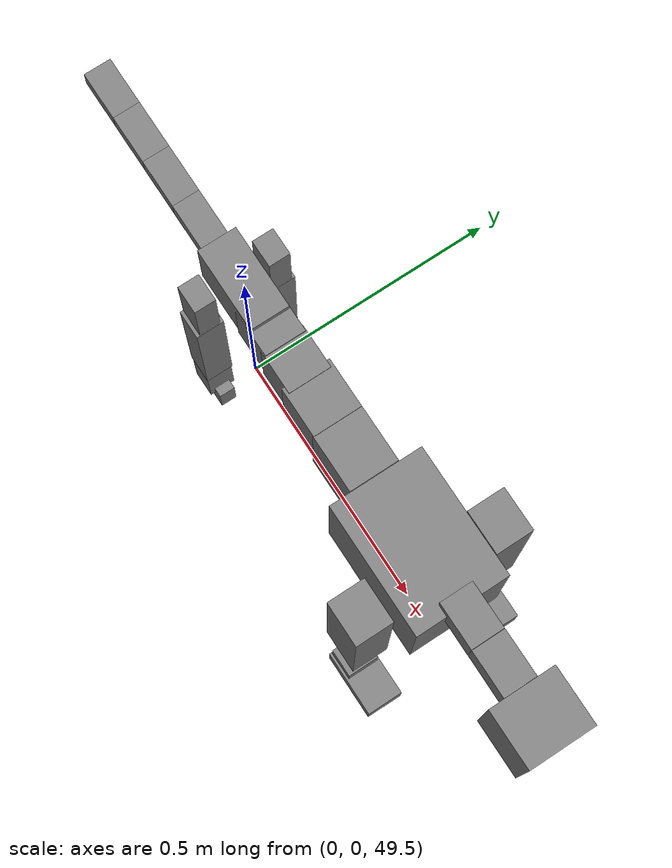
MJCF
<mujoco model="dog">

    <default>
        <joint armature="0.02" stiffness="1" damping="0.2" limited="true"/>
        <geom condim="3" friction="1 0.05 0.05" margin="0.01"/>
        <motor ctrllimited="true" ctrlrange="-1.0 1.0" forcelimited="true" gear="50"/>
    </default>

    <compiler inertiafromgeom="true" angle="radian"/>

    <option timestep="0.016" iterations="50" tolerance="1e-10" solver="Newton" jacobian="dense" cone="pyramidal"/>

    <size nconmax="20000" njmax="60000" nstack="5000000"/>
    <visual>
        <map force="0.1" zfar="30"/>
        <rgba haze="0.15 0.25 0.35 1"/>
        <quality shadowsize="2048"/>
        <global offwidth="800" offheight="800"/>
    </visual>

    <asset>
        <texture type="skybox" builtin="gradient" rgb1="0.3 0.5 0.7" rgb2="0 0 0" width="512" height="512"/>
        <texture name="texplane" type="2d" builtin="checker" rgb1=".2 .3 .4" rgb2=".1 0.15 0.2" width="512" height="512"
                 mark="cross" markrgb=".8 .8 .8"/>
        <texture name="texgeom" type="cube" builtin="flat" mark="cross" width="127" height="1278" rgb1="0.8 0.6 0.4"
                 rgb2="0.8 0.6 0.4" markrgb="1 1 1" random="0.01"/>

        <material name="matplane" reflectance="0.3" texture="texplane" texrepeat="1 1" texuniform="true"/>
        <material name="matgeom" texture="texgeom" texuniform="true" rgba="0.8 0.6 .4 1"/>
    </asset>

    <worldbody>
        <geom name="floor" pos="0 0 0" size="0 0 .25" type="plane" material="matplane" condim="3"/>

        <light directional="false" diffuse=".2 .2 .2" specular="0 0 0" pos="0 0 5" dir="0 0 -1" castshadow="false"/>
        <light mode="targetbodycom" target="torso" directional="false" diffuse=".8 .8 .8" specular="0.3 0.3 0.3"
               pos="0 0 4.0" dir="0 0 -1"/>

        <body name="root" pos="0 0 50">
            <freejoint name="root_1"/>
            <geom type="box" pos="0 0 -0.02" size="0.0774  0.0358  0.063" density="2030"/>

            <body name="spine1" pos="0.054 0 0">
                <joint name="spine1_y" axis="0 1 0" range="0 0.7" limited="true"/>
                <geom type="box" pos="0.02375 0 -0.03" size="0.04375  0.0375  0.05985" density="2030"/>

                <body name="spine2" pos="0.0612 0 0">
                    <joint name="spine2_y" axis="0 1 0" range="-0.15 0.15" limited="true"/>
                    <geom type="box" pos="0.03555  0  -0.04" size="0.04055  0.039  0.06615" density="2030"/>

                    <body name="spine3" pos="0.0730 0 0">
                        <joint name="spine3_y" axis="0 1 0" range="-0.15 0.15" limited="true"/>
                        <geom type="box" pos="0.03555  0  -0.057" size="0.04555  0.0445  0.081" density="2030"/>

                        <body name="spine4" pos="0.0780 0 0">
                            <joint name="spine4_y" axis="0 1 0" range="-0.15 0.15" limited="true"/>
                            <geom type="box" pos="0.05265  0  -0.07" size="0.05265  0.045  0.09135" density="2030"/>

                            <body name="torso" pos="0.1082 0 0">
                                <joint name="torso_y" axis="0 1 0" range="-0.15 0.15" limited="true"/>
                                <geom type="box" pos="0.11925  0  -0.085" size="0.11925  0.085  0.11745"
                                      density="2030"/>

                                <body name="neck1" pos="0.2160  0   0.0180">
                                    <joint name="neck1_y" axis="0 1 0" range="-1.2  -1" limited="true"/>
                                    <geom type="box" pos="0.0423  0  0" size="0.0423  0.03  0.036" density="2325"/>

                                    <body name="neck2" pos="0.0853  0  0">
                                        <joint name="neck2_y" axis="0 1 0" range="0.1  0" limited="true"/>
                                        <geom type="box" pos="0.0423  0  0" size="0.0423  0.03  0.036" density="2325"/>

                                        <body name="head" pos="0.0853  0  0">
                                            <joint name="head_y" axis="0 1 0" range="-0.3  -0.2" limited="true"/>
                                            <geom type="box" pos="0.0531  0  -0.055" size="0.0531  0.06  0.1044"
                                                  density="4030"/>

                                        </body>
                                    </body>
                                </body>

                                <body name="front_shoulder" pos="0.156  0   -0.0480">
                                    <joint name="front_shoulder_y" axis="0 1 0" range="-1 1.5" limited="true"/>
                                    <geom type="box" pos="0 0.13 -0.1529" size="0.0407  0.0348  0.1796" density="1158"/>
                                    <geom type="box" pos="0 -0.13 -0.1529" size="0.0407  0.0348  0.1796"
                                          density="1158"/>

                                    <body name="front_elbow" pos="0  0  -0.3058">
                                        <joint name="front_elbow_y" axis="0 1 0" range="-2 0" limited="true"/>
                                        <geom type="box" pos="0 0.13 -0.1238" size="0.0200  0.0204  0.1238"
                                              density="1081"/>
                                        <geom type="box" pos="0 -0.13 -0.1238" size="0.0200  0.0204  0.1238"
                                              density="1081"/>

                                        <body name="front_wrist" pos="0  0  -0.2476">
                                            <joint name="front_wrist_y" axis="0 1 0" range="-0.2 0" limited="true"/>
                                            <geom type="box" pos="0 0.13 -0.0253" size="0.0279  0.0310  0.0385"
                                                  density="1664"/>
                                            <geom type="box" pos="0 -0.13 -0.0253" size="0.0279  0.0310  0.0385"
                                                  density="1664"/>

                                            <body name="front_finger_end" pos="0  0  -0.0506">
                                                <joint name="front_finger_y" axis="0 1 0" range="-0.4 1"
                                                       limited="true"/>
                                                <geom type="box" pos="0.0360  0.13  -0.0165"
                                                      size="0.0660  0.0360  0.0315" density="1515"/>
                                                <geom type="box" pos="0.0360  -0.13  -0.0165"
                                                      size="0.0660  0.0360  0.0315" density="1515"/>

                                            </body>

                                        </body>
                                    </body>
                                </body>

                            </body>
                        </body>
                    </body>
                </body>
            </body>

            <body name="back_hip" pos="-0.03 0 -0.018">
                <joint name="back_hip_y" axis="0 1 0" range="-1.5 0.3" limited="true"/>
                <geom type="box" pos="0 0.07 -0.0601" size="0.0253  0.0198  0.0829" density="1154"/>
                <geom type="box" pos="0 -0.07 -0.0601" size="0.0253  0.0198  0.0829" density="1154"/>

                <body name="back_knee" pos="0  0  -0.1202">
                    <joint name="back_knee_y" axis="0 1 0" range="0 2.8" limited="true"/>
                    <geom type="box" pos="0 0.07 -0.1239" size="0.0264  0.0260  0.1395" density="1227"/>
                    <geom type="box" pos="0 -0.07 -0.1239" size="0.0264  0.0260  0.1395" density="1227"/>

                    <body name="back_ankle" pos="0  0  -0.2479">
                        <joint name="back_ankle_y" axis="0 1 0" range="-2.2 0" limited="true"/>
                        <geom type="box" pos="0 0.07 -0.0554" size="0.0248  0.0248  0.0666" density="1284"/>
                        <geom type="box" pos="0 -0.07 -0.0554" size="0.0248  0.0248  0.0666" density="1284"/>

                        <body name="back_toe_end" pos="0  0  -0.1107">
                            <joint name="back_toe_y" axis="0 1 0" range="-0.4 1" limited="true"/>
                            <geom type="box" pos="0.0153  0.07  -0.0184" size="0.0280  0.0153  0.0334" density="1515"/>
                            <geom type="box" pos="0.0153  -0.07  -0.0184" size="0.0280  0.0153  0.0334" density="1515"/>

                        </body>
                    </body>
                </body>
            </body>

            <body name="tail1" pos="-0.074 0 -0.006">
                <joint name="tail1_y" axis="0 1 0" range="-0.2 0.2" limited="true"/>
                <geom type="box" pos="-0.0536  0  0" size="0.045  0.025  0.0175" density="1587"/>

                <body name="tail2" pos="-0.09 0 0">
                    <joint name="tail2_y" axis="0 1 0" range="-0.2 0.2" limited="true"/>
                    <geom type="box" pos="-0.0536  0  0" size="0.045  0.025  0.0175" density="1587"/>

                    <body name="tail3" pos="-0.09 0 0">
                        <joint name="tail3_y" axis="0 1 0" range="-0.2 0.2" limited="true"/>
                        <geom type="box" pos="-0.0536  0  0" size="0.045  0.025  0.0175" density="1587"/>

                        <body name="tail4" pos="-0.09 0 0">
                            <joint name="tail4_y" axis="0 1 0" range="-0.2 0.2" limited="true"/>
                            <geom type="box" pos="-0.0536  0  0" size="0.045  0.025  0.0175" density="1587"/>

                        </body>
                    </body>
                </body>
            </body>
        </body>
    </worldbody>

    <actuator>
        <motor joint="spine1_y" forcerange="-150 150     "/>
        <motor joint="spine2_y" forcerange="-150 150     "/>
        <motor joint="spine3_y" forcerange="-150 150     "/>
        <motor joint="spine4_y" forcerange="-150 150     "/>
        <motor joint="torso_y" forcerange="-150 150     "/>
        <motor joint="neck1_y" forcerange="-100 100       "/>
        <motor joint="neck2_y" forcerange="-100 100       "/>
        <motor joint="head_y" forcerange="-150 150       "/>
        <motor joint="front_shoulder_y" forcerange="-160.20 171.74"/>
        <motor joint="front_elbow_y" forcerange="-131.99 116.56"/>
        <motor joint="front_wrist_y" forcerange="-118.67 129.42"/>
        <motor joint="front_finger_y" forcerange="-99.00 53.03"/>
        <motor joint="back_hip_y" forcerange="-224.88 239.63"/>
        <motor joint="back_knee_y" forcerange="-365.47 212.92"/>
        <motor joint="back_angle_y" forcerange="-124.84 171.51"/>
        <motor joint="back_toe_y" forcerange="-20.20 22.18"/>
        <motor joint="tail1_y" forcerange="-50 50     "/>
        <motor joint="tail2_y" forcerange="-50 50     "/>
        <motor joint="tail3_y" forcerange="-50 50     "/>
        <motor joint="tail4_y" forcerange="-50 50     "/>
    </actuator>
</mujoco>
